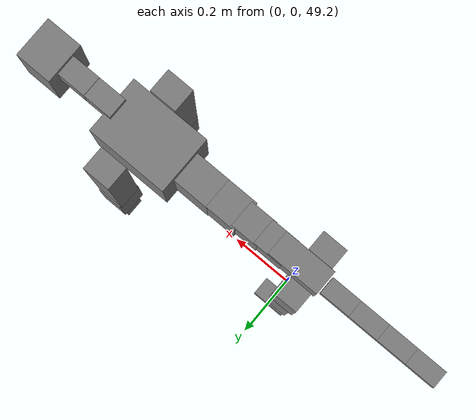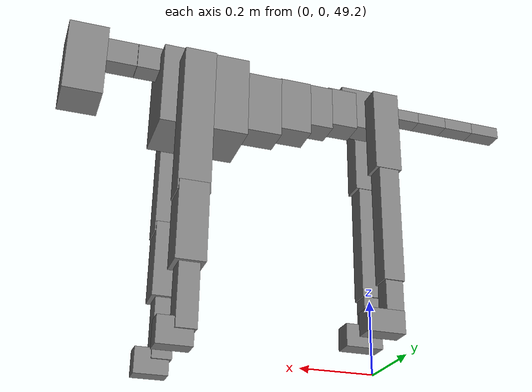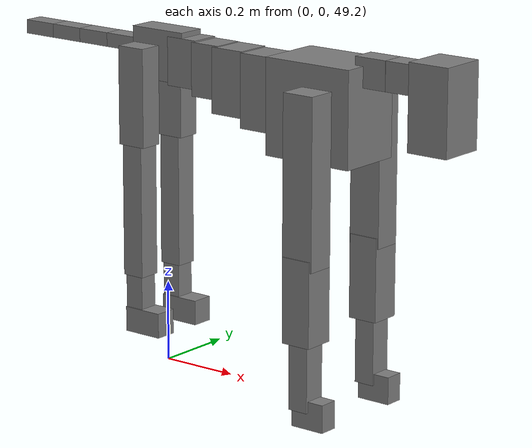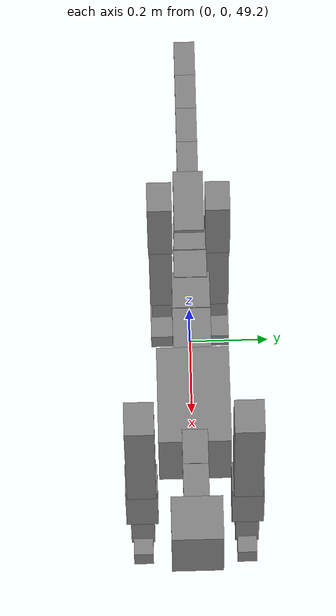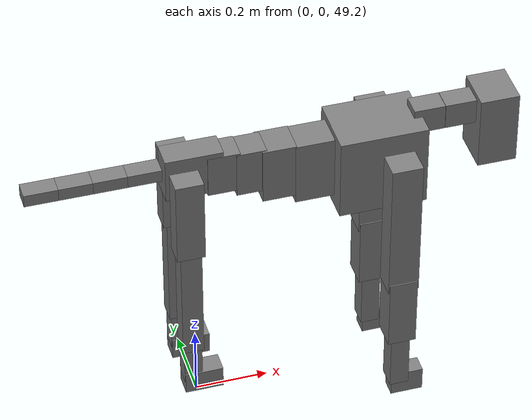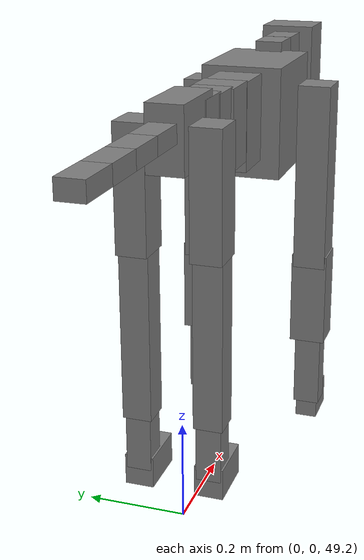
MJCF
<mujoco model="dog">

    <default>
        <joint armature="0.02" stiffness="1" damping="0.2" limited="true"/>
        <geom condim="3" friction="1 0.05 0.05" margin="0.01"/>
        <motor ctrllimited="true" ctrlrange="-1.0 1.0" forcelimited="true" gear="50"/>
    </default>

    <compiler inertiafromgeom="true" angle="radian"/>

    <option timestep="0.016" iterations="50" tolerance="1e-10" solver="Newton" jacobian="dense" cone="pyramidal"/>

    <size nconmax="20000" njmax="60000" nstack="5000000"/>
    <visual>
        <map force="0.1" zfar="30"/>
        <rgba haze="0.15 0.25 0.35 1"/>
        <quality shadowsize="2048"/>
        <global offwidth="800" offheight="800"/>
    </visual>

    <asset>
        <texture type="skybox" builtin="gradient" rgb1="0.3 0.5 0.7" rgb2="0 0 0" width="512" height="512"/>
        <texture name="texplane" type="2d" builtin="checker" rgb1=".2 .3 .4" rgb2=".1 0.15 0.2" width="512" height="512"
                 mark="cross" markrgb=".8 .8 .8"/>
        <texture name="texgeom" type="cube" builtin="flat" mark="cross" width="127" height="1278" rgb1="0.8 0.6 0.4"
                 rgb2="0.8 0.6 0.4" markrgb="1 1 1" random="0.01"/>

        <material name="matplane" reflectance="0.3" texture="texplane" texrepeat="1 1" texuniform="true"/>
        <material name="matgeom" texture="texgeom" texuniform="true" rgba="0.8 0.6 .4 1"/>
    </asset>

    <worldbody>
        <geom name="floor" pos="0 0 0" size="0 0 .25" type="plane" material="matplane" condim="3"/>

        <light directional="false" diffuse=".2 .2 .2" specular="0 0 0" pos="0 0 5" dir="0 0 -1" castshadow="false"/>
        <light mode="targetbodycom" target="torso" directional="false" diffuse=".8 .8 .8" specular="0.3 0.3 0.3"
               pos="0 0 4.0" dir="0 0 -1"/>

        <body name="root" pos="0 0 50">
            <freejoint name="root_1"/>
            <geom type="box" pos="0 0 -0.02" size="0.0774  0.0358  0.063" density="2030"/>

            <body name="spine1" pos="0.054 0 0">
                <joint name="spine1_y" axis="0 1 0" range="0 0.7" limited="true"/>
                <geom type="box" pos="0.02375 0 -0.03" size="0.04375  0.0375  0.05985" density="2030"/>

                <body name="spine2" pos="0.0612 0 0">
                    <joint name="spine2_y" axis="0 1 0" range="-0.15 0.15" limited="true"/>
                    <geom type="box" pos="0.03555  0  -0.04" size="0.04055  0.039  0.06615" density="2030"/>

                    <body name="spine3" pos="0.0730 0 0">
                        <joint name="spine3_y" axis="0 1 0" range="-0.15 0.15" limited="true"/>
                        <geom type="box" pos="0.03555  0  -0.057" size="0.04555  0.0445  0.081" density="2030"/>

                        <body name="spine4" pos="0.0780 0 0">
                            <joint name="spine4_y" axis="0 1 0" range="-0.15 0.15" limited="true"/>
                            <geom type="box" pos="0.05265  0  -0.07" size="0.05265  0.045  0.09135" density="2030"/>

                            <body name="torso" pos="0.1082 0 0">
                                <joint name="torso_y" axis="0 1 0" range="-0.15 0.15" limited="true"/>
                                <geom type="box" pos="0.11925  0  -0.085" size="0.11925  0.085  0.11745"
                                      density="2030"/>

                                <body name="neck1" pos="0.2160  0   0.0180">
                                    <joint name="neck1_y" axis="0 1 0" range="-1.2  -1" limited="true"/>
                                    <geom type="box" pos="0.0423  0  0" size="0.0423  0.03  0.036" density="2325"/>

                                    <body name="neck2" pos="0.0853  0  0">
                                        <joint name="neck2_y" axis="0 1 0" range="0.1  0" limited="true"/>
                                        <geom type="box" pos="0.0423  0  0" size="0.0423  0.03  0.036" density="2325"/>

                                        <body name="head" pos="0.0853  0  0">
                                            <joint name="head_y" axis="0 1 0" range="-0.3  -0.2" limited="true"/>
                                            <geom type="box" pos="0.0531  0  -0.055" size="0.0531  0.06  0.1044"
                                                  density="4030"/>

                                        </body>
                                    </body>
                                </body>

                                <body name="front_shoulder" pos="0.156  0   -0.0480">
                                    <joint name="front_shoulder_y" axis="0 1 0" range="-1 1.5" limited="true"/>
                                    <geom type="box" pos="0 0.13 -0.1804" size="0.0418  0.0357  0.2070" density="1158"/>
                                    <geom type="box" pos="0 -0.13 -0.1804" size="0.0418  0.0357  0.2070"
                                          density="1158"/>

                                    <body name="front_elbow" pos="0  0  -0.3607">
                                        <joint name="front_elbow_y" axis="0 1 0" range="-2 0" limited="true"/>
                                        <geom type="box" pos="0 0.13 -0.1043" size="0.0385  0.0394  0.1043"
                                              density="1081"/>
                                        <geom type="box" pos="0 -0.13 -0.1043" size="0.0385  0.0394  0.1043"
                                              density="1081"/>

                                        <body name="front_wrist" pos="0  0  -0.2086">
                                            <joint name="front_wrist_y" axis="0 1 0" range="-0.2 0" limited="true"/>
                                            <geom type="box" pos="0 0.13 -0.0747" size="0.0263  0.0292  0.0879"
                                                  density="1664"/>
                                            <geom type="box" pos="0 -0.13 -0.0747" size="0.0263  0.0292  0.0879"
                                                  density="1664"/>

                                            <body name="front_finger_end" pos="0  0  -0.1494">
                                                <joint name="front_finger_y" axis="0 1 0" range="-0.4 1"
                                                       limited="true"/>
                                                <geom type="box" pos="0.0243  0.13  -0.0193"
                                                      size="0.0446  0.0243  0.0343" density="1515"/>
                                                <geom type="box" pos="0.0243  -0.13  -0.0193"
                                                      size="0.0446  0.0243  0.0343" density="1515"/>

                                            </body>

                                        </body>
                                    </body>
                                </body>

                            </body>
                        </body>
                    </body>
                </body>
            </body>

            <body name="back_hip" pos="-0.03 0 -0.018">
                <joint name="back_hip_y" axis="0 1 0" range="-1.5 0.3" limited="true"/>
                <geom type="box" pos="0 0.07 -0.0995" size="0.0381  0.0298  0.1223" density="1154"/>
                <geom type="box" pos="0 -0.07 -0.0995" size="0.0381  0.0298  0.1223" density="1154"/>

                <body name="back_knee" pos="0  0  -0.1990">
                    <joint name="back_knee_y" axis="0 1 0" range="0 2.8" limited="true"/>
                    <geom type="box" pos="0 0.07 -0.1680" size="0.0288  0.0283  0.1836" density="1227"/>
                    <geom type="box" pos="0 -0.07 -0.1680" size="0.0288  0.0283  0.1836" density="1227"/>

                    <body name="back_ankle" pos="0  0  -0.3361">
                        <joint name="back_ankle_y" axis="0 1 0" range="-2.2 0" limited="true"/>
                        <geom type="box" pos="0 0.07 -0.0565" size="0.0245  0.0245  0.0678" density="1284"/>
                        <geom type="box" pos="0 -0.07 -0.0565" size="0.0245  0.0245  0.0678" density="1284"/>

                        <body name="back_toe_end" pos="0  0  -0.1130">
                            <joint name="back_toe_y" axis="0 1 0" range="-0.4 1" limited="true"/>
                            <geom type="box" pos="0.0284  0.07  -0.0162" size="0.0521  0.0284  0.0312" density="1515"/>
                            <geom type="box" pos="0.0284  -0.07  -0.0162" size="0.0521  0.0284  0.0312" density="1515"/>

                        </body>
                    </body>
                </body>
            </body>

            <body name="tail1" pos="-0.074 0 -0.006">
                <joint name="tail1_y" axis="0 1 0" range="-0.2 0.2" limited="true"/>
                <geom type="box" pos="-0.0536  0  0" size="0.045  0.025  0.0175" density="1587"/>

                <body name="tail2" pos="-0.09 0 0">
                    <joint name="tail2_y" axis="0 1 0" range="-0.2 0.2" limited="true"/>
                    <geom type="box" pos="-0.0536  0  0" size="0.045  0.025  0.0175" density="1587"/>

                    <body name="tail3" pos="-0.09 0 0">
                        <joint name="tail3_y" axis="0 1 0" range="-0.2 0.2" limited="true"/>
                        <geom type="box" pos="-0.0536  0  0" size="0.045  0.025  0.0175" density="1587"/>

                        <body name="tail4" pos="-0.09 0 0">
                            <joint name="tail4_y" axis="0 1 0" range="-0.2 0.2" limited="true"/>
                            <geom type="box" pos="-0.0536  0  0" size="0.045  0.025  0.0175" density="1587"/>

                        </body>
                    </body>
                </body>
            </body>
        </body>
    </worldbody>

    <actuator>
        <motor joint="spine1_y" forcerange="-150 150     "/>
        <motor joint="spine2_y" forcerange="-150 150     "/>
        <motor joint="spine3_y" forcerange="-150 150     "/>
        <motor joint="spine4_y" forcerange="-150 150     "/>
        <motor joint="torso_y" forcerange="-150 150     "/>
        <motor joint="neck1_y" forcerange="-100 100       "/>
        <motor joint="neck2_y" forcerange="-100 100       "/>
        <motor joint="head_y" forcerange="-150 150       "/>
        <motor joint="front_shoulder_y" forcerange="-165.33 172.61"/>
        <motor joint="front_elbow_y" forcerange="-189.32 197.19"/>
        <motor joint="front_wrist_y" forcerange="-91.30 142.05"/>
        <motor joint="front_finger_y" forcerange="-37.85 51.83"/>
        <motor joint="back_hip_y" forcerange="-255.41 342.50"/>
        <motor joint="back_knee_y" forcerange="-299.08 313.12"/>
        <motor joint="back_angle_y" forcerange="-95.33 197.41"/>
        <motor joint="back_toe_y" forcerange="-94.82 52.73"/>
        <motor joint="tail1_y" forcerange="-50 50     "/>
        <motor joint="tail2_y" forcerange="-50 50     "/>
        <motor joint="tail3_y" forcerange="-50 50     "/>
        <motor joint="tail4_y" forcerange="-50 50     "/>
    </actuator>
</mujoco>
